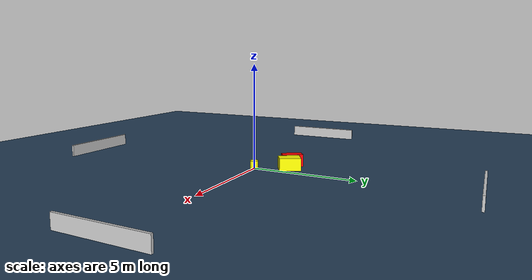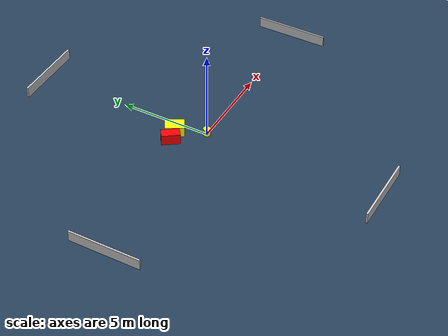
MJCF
<?xml version="1.0" ?>
<mujoco model="generated_environment">
  <option timestep="0.01" integrator="RK4" cone="elliptic"/>
  <default>
    <geom density="1"/>
  </default>
  <asset>
    <texture builtin="gradient" height="3072" name="skybox" rgb1="0.3 0.5 0.7" rgb2="0 0 0" type="skybox" width="512"/>
    <texture builtin="checker" height="300" name="groundplane" rgb1="0.2 0.3 0.4" rgb2="0.1 0.2 0.3" type="2d" width="300"/>
    <material name="groundplane" reflectance="0.2" texrepeat="5 5" texture="groundplane"/>
  </asset>
  <worldbody>
    <light dir="0 0 -1" directional="true" pos="0 0 1.5"/>
    <geom condim="3" friction="0.5 0.005 0.001" material="groundplane" name="floor" pos="0 0 0" size="0 0 0.05" type="plane"/>
    <body name="walls">
      <geom name="wall_1" condim="4" pos="-10.0 0.0 0.3" rgba="0.800000011920929 0.800000011920929 0.800000011920929 1.0" size="0.05 2.0 0.3" type="box"/>
      <geom name="wall_2" condim="4" pos="10.0 0.0 0.3" rgba="0.800000011920929 0.800000011920929 0.800000011920929 1.0" size="0.05 2.0 0.3" type="box"/>
      <geom name="wall_3" condim="4" pos="0.0 -10.0 0.3" rgba="0.800000011920929 0.800000011920929 0.800000011920929 1.0" size="2.0 0.05 0.3" type="box"/>
      <geom name="wall_4" condim="4" pos="0.0 10.0 0.3" rgba="0.800000011920929 0.800000011920929 0.800000011920929 1.0" size="2.0 0.05 0.3" type="box"/>
    </body>
    <body name="robot">
      <joint name="joint_x" type="slide" pos="0 0 0" axis="1 0 0"/>
      <joint name="joint_y" type="slide" pos="0 0 0" axis="0 1 0"/>
      <geom name="robot" type="cylinder" pos="0.0 0.0 0.2" size="0.2 0.2 0.0" mass="5.0" friction="1.0 0.005 0.0001" condim="4" rgba="1.0 1.0 0.0 1.0"/>
    </body>
    <body name="obstacle_1_movable">
      <geom name="obstacle_1_movable" condim="4" pos="-0.6676463692639091 1.5523446708152238 0.3" euler="0 0 300.2031615893604" friction="0.0 0.005 0.001" rgba="1.0 1.0 0.0 1.0" size="0.5161068123522567 0.3612567649384922 0.3" type="box" mass="0.1"/>
      <joint type="free"/>
    </body>
    <body name="obstacle_2_static">
      <geom name="obstacle_2_static" condim="4" pos="-1.3863939286543572 1.393589676427871 0.3" euler="0 0 305.02488813911623" friction="0.0 0.005 0.001" rgba="1.0 0.0 0.0 1.0" size="0.5006726778977233 0.2680574013035099 0.3" type="box"/>
    </body>
  </worldbody>
  <actuator>
    <motor name="actuator_x" joint="joint_x" gear="1" ctrlrange="-1 1"/>
    <motor name="actuator_y" joint="joint_y" gear="1" ctrlrange="-1 1"/>
  </actuator>
</mujoco>
